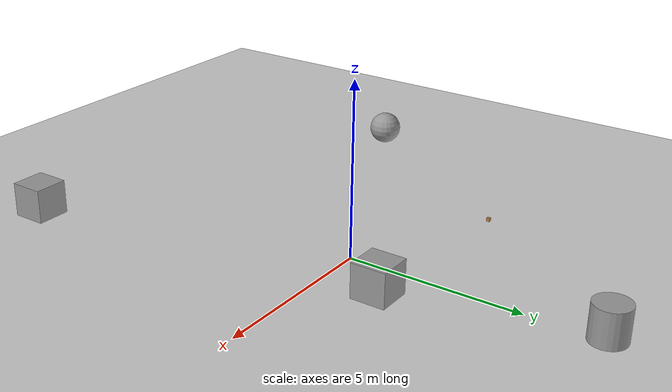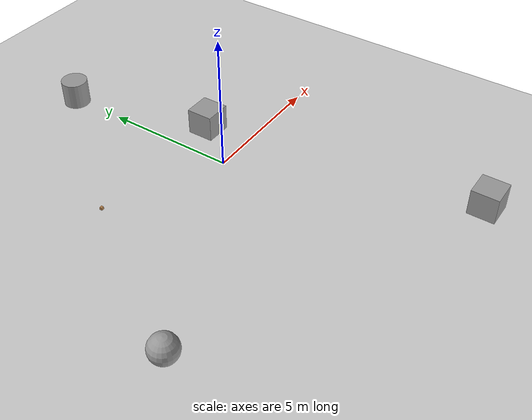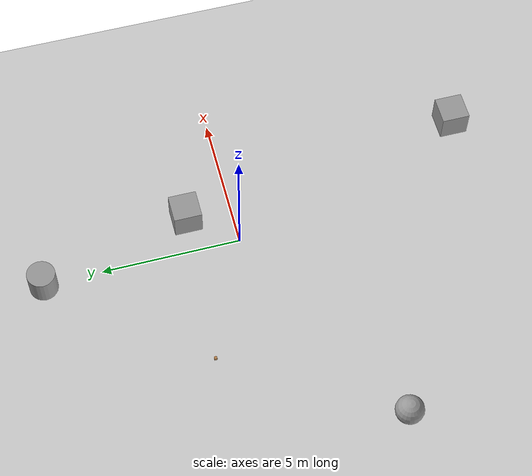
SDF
<sdf version="1.7">
 <world name="default">
  <light name="sun" type="directional">
   <pose>0 0 10 0 -0 0</pose>
   <diffuse>0.8 0.8 0.8 1</diffuse>
   <specular>0.2 0.2 0.2 1</specular>
   <attenuation>
    <range>1000</range>
    <constant>0.9</constant>
    <linear>0.01</linear>
    <quadratic>0.001</quadratic>
   </attenuation>
   <direction>-0.5 0.1 -0.9</direction>
   <spot><inner_angle>0</inner_angle><outer_angle>0</outer_angle><falloff>0</falloff></spot>
  </light>
  <model name="ground_plane">
   <static>1</static>
   <link name="link">
    <collision name="collision">
     <geometry><plane><normal>0 0 1</normal><size>100 100</size></plane></geometry>
     <surface>
      <contact><collide_bitmask>65535</collide_bitmask></contact>
      <friction><ode><mu>100</mu><mu2>50</mu2></ode></friction>
     </surface>
    </collision>
    <visual name="visual">
     <cast_shadows>0</cast_shadows>
     <geometry><plane><normal>0 0 1</normal><size>100 100</size></plane></geometry>
     <material>
      <script><uri>file://media/materials/scripts/gazebo.material</uri><name>Gazebo/Grey</name></script>
     </material>
    </visual>
   </link>
  </model>
  <gravity>0 0 -9.8</gravity>
  <magnetic_field>6e-06 2.3e-05 -4.2e-05</magnetic_field>
  <atmosphere type="adiabatic"/>
  <physics type="ode">
   <max_step_size>0.001</max_step_size>
   <real_time_factor>1</real_time_factor>
   <real_time_update_rate>1000</real_time_update_rate>
  </physics>
  <scene><ambient>0.4 0.4 0.4 1</ambient><background>0.7 0.7 0.7 1</background><shadows>1</shadows></scene>
  <spherical_coordinates>
   <surface_model>EARTH_WGS84</surface_model>
   <latitude_deg>0</latitude_deg>
   <longitude_deg>0</longitude_deg>
   <elevation>0</elevation>
   <heading_deg>0</heading_deg>
  </spherical_coordinates>
  <model name="wood_cube_10cm">
   <link name="link">
    <pose>0 0 0.05 0 -0 0</pose>
    <inertial>
     <mass>0.5167</mass>
     <inertia>
      <ixx>0.000861167</ixx>
      <ixy>0</ixy>
      <ixz>0</ixz>
      <iyy>0.000861167</iyy>
      <iyz>0</iyz>
      <izz>0.000861167</izz>
     </inertia>
    </inertial>
    <collision name="collision">
     <geometry><box><size>0.1 0.1 0.1</size></box></geometry>
     <surface>
      <contact>
       <poissons_ratio>0.347</poissons_ratio>
       <elastic_modulus>8.8e+09</elastic_modulus>
       <ode><kp>100000</kp><kd>100</kd><max_vel>100</max_vel><min_depth>0.001</min_depth></ode>
      </contact>
      <friction>
       <torsional>
        <coefficient>1</coefficient>
        <use_patch_radius>0</use_patch_radius>
        <surface_radius>0.01</surface_radius>
       </torsional>
      </friction>
     </surface>
    </collision>
    <visual name="visual">
     <geometry><box><size>0.1 0.1 0.1</size></box></geometry>
     <material>
      <script><uri>file://media/materials/scripts/gazebo.material</uri><name>Gazebo/Wood</name></script>
     </material>
    </visual>
   </link>
   <pose>-4.25689 1.94066 -0.001013 0 -0 0</pose>
  </model>
  <model name="unit_box">
   <pose>2.92997 -8.80274 0.499995 -1e-05 -0 0</pose>
   <link name="link">
    <inertial>
     <mass>1</mass>
     <inertia>
      <ixx>0.166667</ixx>
      <ixy>0</ixy>
      <ixz>0</ixz>
      <iyy>0.166667</iyy>
      <iyz>0</iyz>
      <izz>0.166667</izz>
     </inertia>
    </inertial>
    <collision name="collision"><geometry><box><size>1 1 1</size></box></geometry></collision>
    <visual name="visual">
     <geometry><box><size>1 1 1</size></box></geometry>
     <material>
      <script><name>Gazebo/Grey</name><uri>file://media/materials/scripts/gazebo.material</uri></script>
     </material>
    </visual>
   </link>
  </model>
  <model name="unit_cylinder">
   <pose>-0.082716 7.07802 0.5 0 -0 0</pose>
   <link name="link">
    <inertial>
     <mass>1</mass>
     <inertia><ixx>0.145833</ixx><ixy>0</ixy><ixz>0</ixz><iyy>0.145833</iyy><iyz>0</iyz><izz>0.125</izz></inertia>
    </inertial>
    <collision name="collision">
     <geometry><cylinder><radius>0.5</radius><length>1</length></cylinder></geometry>
    </collision>
    <visual name="visual">
     <geometry><cylinder><radius>0.5</radius><length>1</length></cylinder></geometry>
     <material>
      <script><name>Gazebo/Grey</name><uri>file://media/materials/scripts/gazebo.material</uri></script>
     </material>
    </visual>
   </link>
  </model>
  <model name="unit_sphere">
   <pose>-7.88726 -3.77075 0.5 0 -0 0</pose>
   <link name="link">
    <inertial>
     <mass>1</mass>
     <inertia><ixx>0.1</ixx><ixy>0</ixy><ixz>0</ixz><iyy>0.1</iyy><iyz>0</iyz><izz>0.1</izz></inertia>
    </inertial>
    <collision name="collision"><geometry><sphere><radius>0.5</radius></sphere></geometry></collision>
    <visual name="visual">
     <geometry><sphere><radius>0.5</radius></sphere></geometry>
     <material>
      <script><name>Gazebo/Grey</name><uri>file://media/materials/scripts/gazebo.material</uri></script>
     </material>
    </visual>
   </link>
  </model>
  <model name="unit_box_0">
   <pose>1.3133 1.6599 0.5 0 -0 0</pose>
   <link name="link">
    <inertial>
     <mass>1</mass>
     <inertia>
      <ixx>0.166667</ixx>
      <ixy>0</ixy>
      <ixz>0</ixz>
      <iyy>0.166667</iyy>
      <iyz>0</iyz>
      <izz>0.166667</izz>
     </inertia>
    </inertial>
    <collision name="collision"><geometry><box><size>1 1 1</size></box></geometry></collision>
    <visual name="visual">
     <geometry><box><size>1 1 1</size></box></geometry>
     <material>
      <script><name>Gazebo/Grey</name><uri>file://media/materials/scripts/gazebo.material</uri></script>
     </material>
    </visual>
   </link>
  </model>
 </world>
</sdf>
